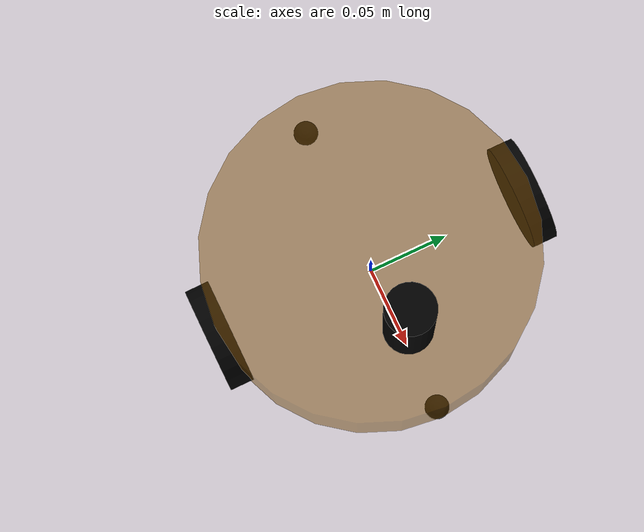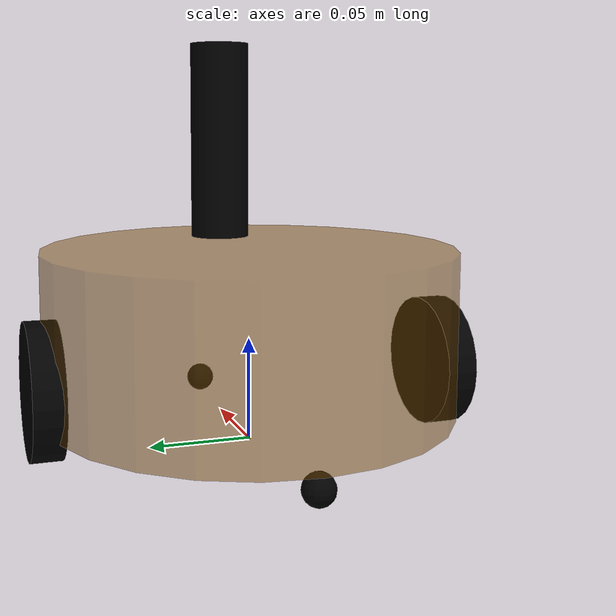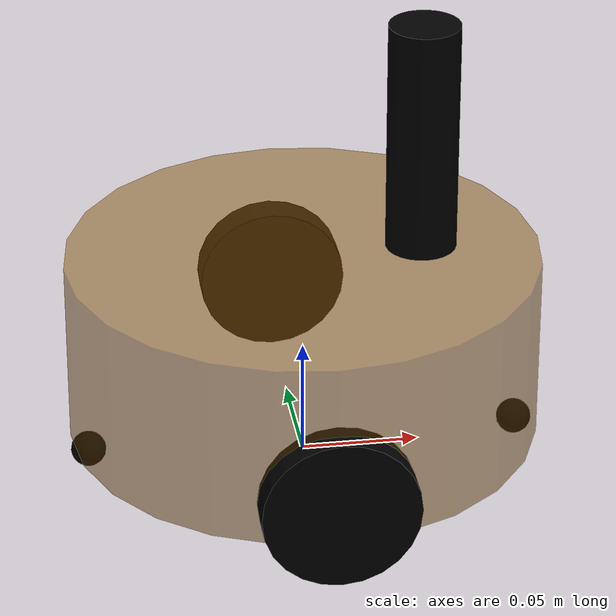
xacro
<!--
    使用 xacro 优化 URDF 版的小车底盘实现：

    实现思路:
    1.将一些常量、变量封装为 xacro:property
      比如:PI 值、小车底盘半径、离地间距、车轮半径、宽度 ....
    2.使用 宏 封装驱动轮以及支撑轮实现，调用相关宏生成驱动轮与支撑轮

-->
<!-- 根标签，必须声明 xmlns:xacro -->
<robot name="my_base" xmlns:xacro="http://www.ros.org/wiki/xacro">
    <!-- 封装变量、常量 -->
    <xacro:property name="PI" value="3.141"/>
    <!-- 宏:黑色设置 -->
    <material name="black">
        <color rgba="0.0 0.0 0.0 1.0" />
    </material>
    <!-- 底盘属性 -->
    <xacro:property name="base_footprint_radius" value="0.001" /> <!-- base_footprint 半径  -->
    <xacro:property name="base_link_radius" value="0.1" /> <!-- base_link 半径 -->
    <xacro:property name="base_link_length" value="0.08" /> <!-- base_link 长 -->
    <xacro:property name="earth_space" value="0.015" /> <!-- 离地间距 -->

    <!-- 底盘 -->
    <link name="base_footprint">
      <visual>
        <geometry>
          <sphere radius="${base_footprint_radius}" />
        </geometry>
      </visual>
    </link>

    <link name="base_link">
      <visual>
        <geometry>
          <cylinder radius="${base_link_radius}" length="${base_link_length}" />
        </geometry>
        <origin xyz="0 0 0" rpy="0 0 0" />
        <material name="yellow">
          <color rgba="0.5 0.3 0.0 0.5" />
        </material>
      </visual>
    </link>

    <joint name="base_link2base_footprint" type="fixed">
      <parent link="base_footprint" />
      <child link="base_link" />
      <origin xyz="0 0 ${earth_space + base_link_length / 2 }" />
    </joint>

    <!-- 驱动轮 -->
    <!-- 驱动轮属性 -->
    <xacro:property name="wheel_radius" value="0.0325" /><!-- 半径 -->
    <xacro:property name="wheel_length" value="0.015" /><!-- 宽度 -->
    <!-- 驱动轮宏实现 -->
    <xacro:macro name="add_wheels" params="name flag">
      <link name="${name}_wheel">
        <visual>
          <geometry>
            <cylinder radius="${wheel_radius}" length="${wheel_length}" />
          </geometry>
          <origin xyz="0.0 0.0 0.0" rpy="${PI / 2} 0.0 0.0" />
          <material name="black" />
        </visual>
      </link>

      <joint name="${name}_wheel2base_link" type="continuous">
        <parent link="base_link" />
        <child link="${name}_wheel" />
        <origin xyz="0 ${flag * base_link_radius} ${-(earth_space + base_link_length / 2 - wheel_radius) }" />
        <axis xyz="0 1 0" />
      </joint>
    </xacro:macro>
    <xacro:add_wheels name="left" flag="1" />
    <xacro:add_wheels name="right" flag="-1" />
    <!-- 支撑轮 -->
    <!-- 支撑轮属性 -->
    <xacro:property name="support_wheel_radius" value="0.0075" /> <!-- 支撑轮半径 -->

    <!-- 支撑轮宏 -->
    <xacro:macro name="add_support_wheel" params="name flag" >
      <link name="${name}_wheel">
        <visual>
            <geometry>
                <sphere radius="${support_wheel_radius}" />
            </geometry>
            <origin xyz="0 0 0" rpy="0 0 0" />
            <material name="black" />
        </visual>
      </link>

      <joint name="${name}_wheel2base_link" type="continuous">
          <parent link="base_link" />
          <child link="${name}_wheel" />
          <origin xyz="${flag * (base_link_radius - support_wheel_radius)} 0 ${-(base_link_length / 2 + earth_space / 2)}" />
          <axis xyz="1 1 1" />
      </joint>
    </xacro:macro>

    <xacro:add_support_wheel name="front" flag="1" />
    <xacro:add_support_wheel name="back" flag="-1" />

    <xacro:property name="camera_support_circle" value="0.015" />
    <xacro:property name="camera_support_height" value="0.10" />
    <!-- 摄像头支架宏实现 -->
    <xacro:macro name="camera_support" params="name">
      <link name="${name}_camera_support">
        <visual>
          <geometry>
            <cylinder radius="${camera_support_circle}" length="${camera_support_height}" />
          </geometry>
          <origin xyz="0.0 0.0 0.0" rpy="0.0 0.0 0.0" />
          <material name="black" />
        </visual>
      </link>

      <joint name="${name}_support2base_link" type="continuous">
        <parent link="base_link" />
        <child link="${name}_camera_support" />
        <origin xyz=" ${0.5 * base_link_radius} 0 ${(base_link_length / 2 + camera_support_height / 2) }" />
        <axis xyz="0 1 0" />
      </joint>
    </xacro:macro>
    <xacro:property name="camera_name" value="C1" />
    <xacro:camera_support name="${camera_name}"/>

    <xacro:property name="camera_circle" value="0.030" />
    <xacro:property name="camera_height" value="0.030" />
    <!-- 摄像头支架宏实现 -->
    <xacro:macro name="camera" params="name">
      <link name="${name}_camera">
        <visual>
          <geometry>
            <cylinder radius="${camera_circle}" length="${camera_height}" />
          </geometry>
          <origin xyz="0.0 0.0 0.0" rpy="0.0 0.0 0.0" />
          <material name="black" />
        </visual>
      </link>

      <joint name="${name}_camera2support" type="continuous">
        <parent link="${camera_name}_camera_support" />
        <child link="${name}_camera" />
        <origin xyz=" 0 0 ${(camera_support_height / 2 + camera_height / 2) }" />
        <axis xyz="0 0 1" />
      </joint>
    </xacro:macro>
    <xacro:camera_support name="c2"/>

</robot>
